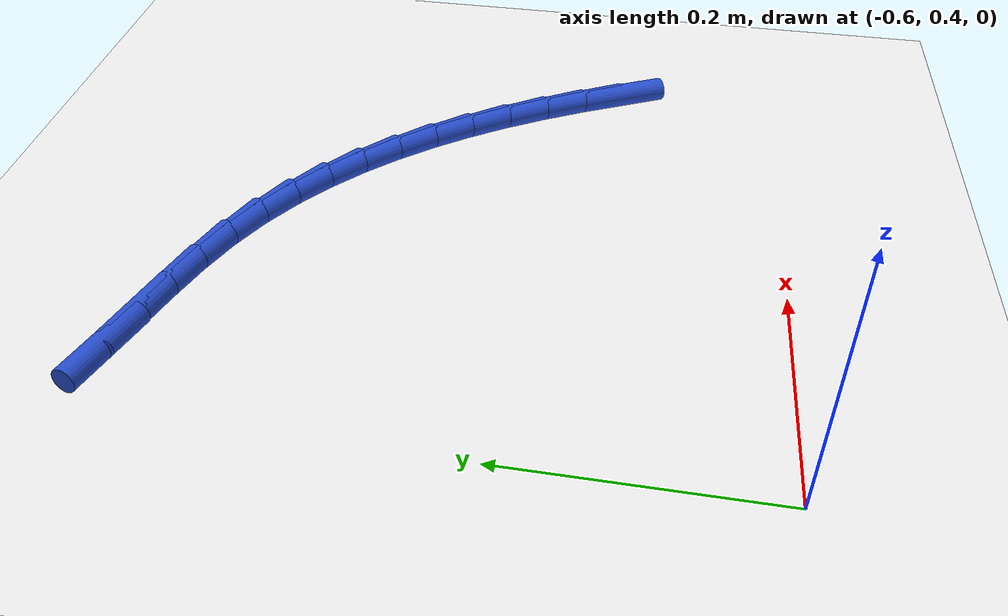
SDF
<sdf version="1.6">
 <world name="default">
  <model name="ground_plane">
   <static>1</static>
   <link name="link">
    <collision name="collision">
     <geometry><plane><normal>0 0 1</normal><size>100 100</size></plane></geometry>
     <surface><friction><ode><mu>100</mu><mu2>50</mu2></ode></friction></surface>
    </collision>
    <visual name="visual">
     <cast_shadows>0</cast_shadows>
     <geometry><plane><normal>0 0 1</normal><size>100 100</size></plane></geometry>
     <material>
      <script><uri>file://media/materials/scripts/gazebo.material</uri><name>Gazebo/WhiteGlow</name></script>
     </material>
    </visual>
   </link>
  </model>
  <model name="line">
   <link name="link_15">
    <pose>-0.13770409694919122 0.5394123802129192 0.01 0 1.57 -1.0878365530715979</pose>
    <collision name="collision">
     <geometry><cylinder><radius>0.01</radius><length>0.08</length></cylinder></geometry>
    </collision>
    <visual name="visual">
     <material>
      <script><name>Gazebo/Blue</name><uri>file://media/materials/scripts/gazebo.material</uri></script>
     </material>
     <geometry><cylinder><radius>0.01</radius><length>0.08</length></cylinder></geometry>
    </visual>
   </link>
   <link name="link_16">
    <pose>-0.15562991835721016 0.5735972612876621 0.01 0 1.57 -1.047026320903879</pose>
    <collision name="collision">
     <geometry><cylinder><radius>0.01</radius><length>0.08</length></cylinder></geometry>
    </collision>
    <visual name="visual">
     <material>
      <script><name>Gazebo/Blue</name><uri>file://media/materials/scripts/gazebo.material</uri></script>
     </material>
     <geometry><cylinder><radius>0.01</radius><length>0.08</length></cylinder></geometry>
    </visual>
   </link>
   <link name="link_17">
    <pose>-0.1747863062566371 0.606763981693362 0.01 0 1.57 -1.002162322161715</pose>
    <collision name="collision">
     <geometry><cylinder><radius>0.01</radius><length>0.08</length></cylinder></geometry>
    </collision>
    <visual name="visual">
     <material>
      <script><name>Gazebo/Blue</name><uri>file://media/materials/scripts/gazebo.material</uri></script>
     </material>
     <geometry><cylinder><radius>0.01</radius><length>0.08</length></cylinder></geometry>
    </visual>
   </link>
   <link name="link_18">
    <pose>-0.19521384854823648 0.6387298137049426 0.01 0 1.57 -0.9528273553679396</pose>
    <collision name="collision">
     <geometry><cylinder><radius>0.01</radius><length>0.08</length></cylinder></geometry>
    </collision>
    <visual name="visual">
     <material>
      <script><name>Gazebo/Blue</name><uri>file://media/materials/scripts/gazebo.material</uri></script>
     </material>
     <geometry><cylinder><radius>0.01</radius><length>0.08</length></cylinder></geometry>
    </visual>
   </link>
   <link name="link_19">
    <pose>-0.21695313313277248 0.6693120295973263 0.01 0 1.57 -0.8986050735529741</pose>
    <collision name="collision">
     <geometry><cylinder><radius>0.01</radius><length>0.08</length></cylinder></geometry>
    </collision>
    <visual name="visual">
     <material>
      <script><name>Gazebo/Blue</name><uri>file://media/materials/scripts/gazebo.material</uri></script>
     </material>
     <geometry><cylinder><radius>0.01</radius><length>0.08</length></cylinder></geometry>
    </visual>
   </link>
   <link name="link_20">
    <pose>-0.24004474791100983 0.6983279016454369 0.01 0 1.57 -0.8391086953418703</pose>
    <collision name="collision">
     <geometry><cylinder><radius>0.01</radius><length>0.08</length></cylinder></geometry>
    </collision>
    <visual name="visual">
     <material>
      <script><name>Gazebo/Blue</name><uri>file://media/materials/scripts/gazebo.material</uri></script>
     </material>
     <geometry><cylinder><radius>0.01</radius><length>0.08</length></cylinder></geometry>
    </visual>
   </link>
   <link name="link_21">
    <pose>-0.2645292807837126 0.7255947021241973 0.01 0 1.57 -0.7740229837894332</pose>
    <collision name="collision">
     <geometry><cylinder><radius>0.01</radius><length>0.08</length></cylinder></geometry>
    </collision>
    <visual name="visual">
     <material>
      <script><name>Gazebo/Blue</name><uri>file://media/materials/scripts/gazebo.material</uri></script>
     </material>
     <geometry><cylinder><radius>0.01</radius><length>0.08</length></cylinder></geometry>
    </visual>
   </link>
   <link name="link_22">
    <pose>-0.2904473196516452 0.7509297033085308 0.01 0 1.57 -0.7031607464787559</pose>
    <collision name="collision">
     <geometry><cylinder><radius>0.01</radius><length>0.08</length></cylinder></geometry>
    </collision>
    <visual name="visual">
     <material>
      <script><name>Gazebo/Blue</name><uri>file://media/materials/scripts/gazebo.material</uri></script>
     </material>
     <geometry><cylinder><radius>0.01</radius><length>0.08</length></cylinder></geometry>
    </visual>
   </link>
   <link name="link_23">
    <pose>-0.3178394524155721 0.7741501774733606 0.01 0 1.57 -0.6265317830288788</pose>
    <collision name="collision">
     <geometry><cylinder><radius>0.01</radius><length>0.08</length></cylinder></geometry>
    </collision>
    <visual name="visual">
     <material>
      <script><name>Gazebo/Blue</name><uri>file://media/materials/scripts/gazebo.material</uri></script>
     </material>
     <geometry><cylinder><radius>0.01</radius><length>0.08</length></cylinder></geometry>
    </visual>
   </link>
   <link name="link_24">
    <pose>-0.34674626697625766 0.7950733968936099 0.01 0 1.57 -0.5444164518723954</pose>
    <collision name="collision">
     <geometry><cylinder><radius>0.01</radius><length>0.08</length></cylinder></geometry>
    </collision>
    <visual name="visual">
     <material>
      <script><name>Gazebo/Blue</name><uri>file://media/materials/scripts/gazebo.material</uri></script>
     </material>
     <geometry><cylinder><radius>0.01</radius><length>0.08</length></cylinder></geometry>
    </visual>
   </link>
   <link name="link_25">
    <pose>-0.3772083512344663 0.8135166338442017 0.01 0 1.57 -0.4574295171958053</pose>
    <collision name="collision">
     <geometry><cylinder><radius>0.01</radius><length>0.08</length></cylinder></geometry>
    </collision>
    <visual name="visual">
     <material>
      <script><name>Gazebo/Blue</name><uri>file://media/materials/scripts/gazebo.material</uri></script>
     </material>
     <geometry><cylinder><radius>0.01</radius><length>0.08</length></cylinder></geometry>
    </visual>
   </link>
   <link name="link_26">
    <pose>-0.40926627706350077 0.829297191951808 0.01 0 1.57 -0.37290345323113205</pose>
    <collision name="collision">
     <geometry><cylinder><radius>0.01</radius><length>0.08</length></cylinder></geometry>
    </collision>
    <visual name="visual">
     <material>
      <script><name>Gazebo/Blue</name><uri>file://media/materials/scripts/gazebo.material</uri></script>
     </material>
     <geometry><cylinder><radius>0.01</radius><length>0.08</length></cylinder></geometry>
    </visual>
   </link>
   <link name="link_27">
    <pose>-0.44285569538029007 0.8424376135469961 0.01 0 1.57 -0.3126170929630039</pose>
    <collision name="collision">
     <geometry><cylinder><radius>0.01</radius><length>0.08</length></cylinder></geometry>
    </collision>
    <visual name="visual">
     <material>
      <script><name>Gazebo/Blue</name><uri>file://media/materials/scripts/gazebo.material</uri></script>
     </material>
     <geometry><cylinder><radius>0.01</radius><length>0.08</length></cylinder></geometry>
    </visual>
   </link>
   <link name="link_28">
    <pose>-0.47755776934733923 0.85365386398829 0.01 0 1.57 -0.2799374048862171</pose>
    <collision name="collision">
     <geometry><cylinder><radius>0.01</radius><length>0.08</length></cylinder></geometry>
    </collision>
    <visual name="visual">
     <material>
      <script><name>Gazebo/Blue</name><uri>file://media/materials/scripts/gazebo.material</uri></script>
     </material>
     <geometry><cylinder><radius>0.01</radius><length>0.08</length></cylinder></geometry>
    </visual>
   </link>
   <link name="link_29">
    <pose>-0.5128788726544584 0.863808206332706 0.01 0 1.57 -0.2737848620738834</pose>
    <collision name="collision">
     <geometry><cylinder><radius>0.01</radius><length>0.08</length></cylinder></geometry>
    </collision>
    <visual name="visual">
     <material>
      <script><name>Gazebo/Blue</name><uri>file://media/materials/scripts/gazebo.material</uri></script>
     </material>
     <geometry><cylinder><radius>0.01</radius><length>0.08</length></cylinder></geometry>
    </visual>
   </link>
   <link name="link_30">
    <pose>-0.5483253789914568 0.8737629036372597 0.01 0 1.57 -0.2939090079821581</pose>
    <collision name="collision">
     <geometry><cylinder><radius>0.01</radius><length>0.08</length></cylinder></geometry>
    </collision>
    <visual name="visual">
     <material>
      <script><name>Gazebo/Blue</name><uri>file://media/materials/scripts/gazebo.material</uri></script>
     </material>
     <geometry><cylinder><radius>0.01</radius><length>0.08</length></cylinder></geometry>
    </visual>
   </link>
  </model>
 </world>
</sdf>
